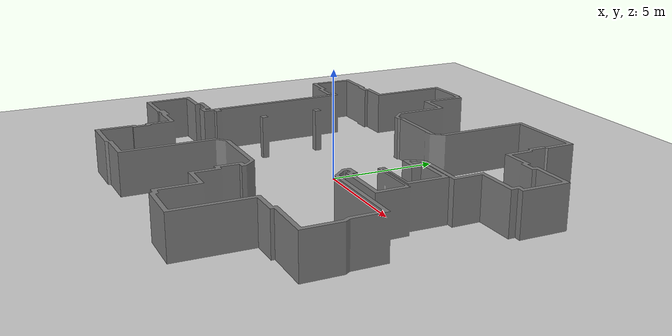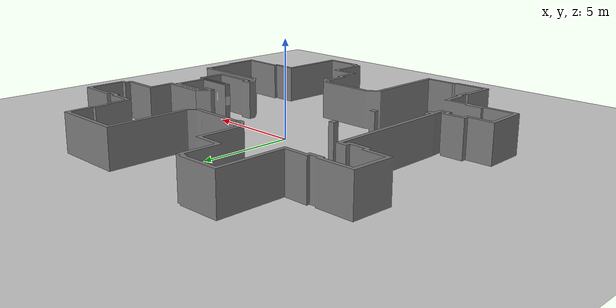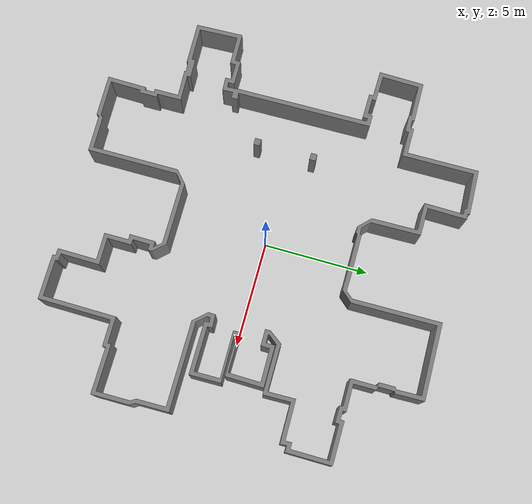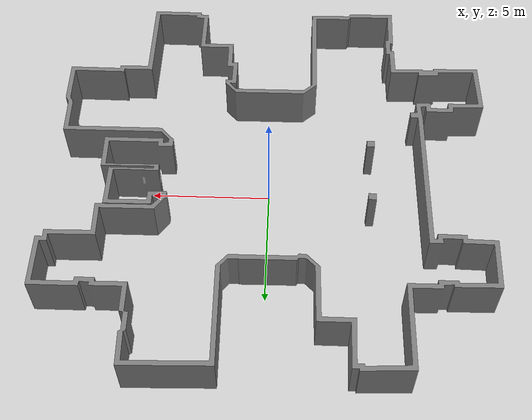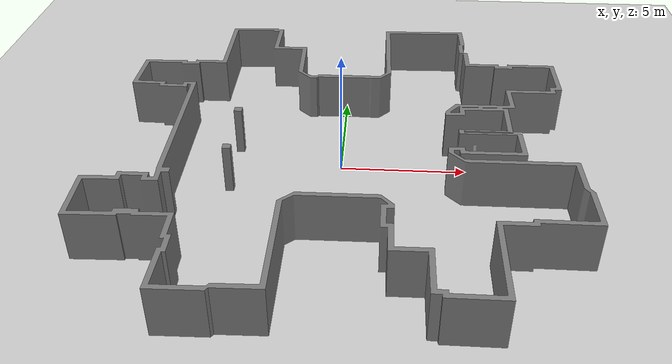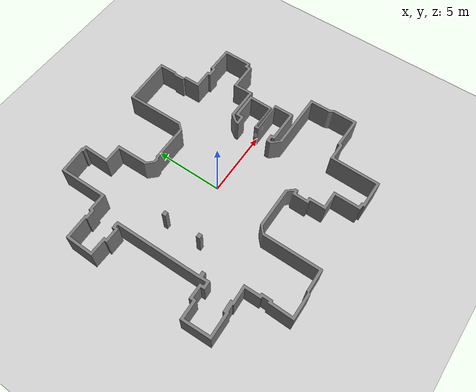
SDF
<?xml version="1.0" ?>
<gazebo version="1.2">
  <world name="default">
    <scene>
      <ambient>0.5 0.5 0.5 1</ambient>
      <background>0.5 0.5 0.5 1</background>
      <shadows>false</shadows>
    </scene>

    <physics type="ode">
      <gravity>0 0 -9.8</gravity>
      <ode>
        <solver>
          <type>quick</type>
          <dt>0.001</dt>
          <iters>10</iters>
          <sor>1.3</sor>
        </solver>
        <constraints>
          <cfm>0.0</cfm>
          <erp>0.2</erp>
          <contact_max_correcting_vel>100.0</contact_max_correcting_vel>
          <contact_surface_layer>0.001</contact_surface_layer>
        </constraints>
      </ode>
    </physics>

    <!-- Ground Plane -->
    <model name="plane1_model">
      <link name="body">
        <collision name="geom_1">
          <geometry>
            <plane>
              <normal>0 0 1</normal>
            </plane>
          </geometry>
          <surface>
            <friction>
              <ode>
                <mu>10.0</mu>
                <mu2>10.0</mu2>
                <fdir1>0 0 0</fdir1>
                <slip1>0</slip1>
                <slip2>0</slip2>
              </ode>
            </friction>
            <bounce>
              <restitution_coefficient>0</restitution_coefficient>
              <threshold>1000000.0</threshold>
            </bounce>
            <contact>
              <ode>
                <soft_cfm>0</soft_cfm>
                <soft_erp>0.2</soft_erp>
                <kp>1e10</kp>
                <kd>1</kd>
                <max_vel>100.0</max_vel>
                <min_depth>0.0001</min_depth>
              </ode>
            </contact>
          </surface>
        </collision>

        <visual name="visual_1">
          <geometry>
            <plane>
              <normal>0 0 1</normal>
              <size>100 100</size>
            </plane>
          </geometry>
          <material>
            <script>Gazebo/Grey</script>
          </material>
          <cast_shadows>false</cast_shadows>
        </visual>
      </link>
      <static>true</static>
    </model>

    <model name="muffin_map">
      <static>true</static>
      <link name="muffin_map_link">
        <pose>1 5.5 0 0 0 1.57</pose>
        <collision name="muffin_map_collision">
          <geometry>
            <mesh>
              <uri>file://floor.dae</uri>
              <scale>1.0 1.0 1.0</scale>
            </mesh>
          </geometry>
        </collision>
        <visual name="muffin_map_visual">
          <cast_shadows>false</cast_shadows>
          <geometry>
            <mesh>
              <uri>file://floor.dae</uri>
              <scale>1.0 1.0 1.0</scale>
            </mesh>
          </geometry>
        </visual>
      </link>
    </model>

    <light type="point" name="my_light1">
      <pose>10 10 10 0 0 0</pose>
      <diffuse>.8 .8 .8 1</diffuse>
      <specular>.1 .1 .1 1</specular>
      <attenuation>
        <range>200</range>
        <linear>0.05</linear>
        <constant>0.1</constant>
        <quadratic>0.0</quadratic>
      </attenuation>
      <direction>0 0 -1</direction>
      <cast_shadows>false</cast_shadows>
    </light>

    <light type="point" name="my_light2">
      <pose>10 -10 10 0 0 0</pose>
      <diffuse>.8 .8 .8 1</diffuse>
      <specular>.1 .1 .1 1</specular>
      <attenuation>
        <range>200</range>
        <linear>0.05</linear>
        <constant>0.1</constant>
        <quadratic>0.0</quadratic>
      </attenuation>
      <direction>0 0 -1</direction>
      <cast_shadows>false</cast_shadows>
    </light>

    <light type="point" name="my_light3">
      <pose>-10 10 10 0 0 0</pose>
      <diffuse>.8 .8 .8 1</diffuse>
      <specular>.1 .1 .1 1</specular>
      <attenuation>
        <range>200</range>
        <linear>0.05</linear>
        <constant>0.1</constant>
        <quadratic>0.0</quadratic>
      </attenuation>
      <direction>0 0 -1</direction>
      <cast_shadows>false</cast_shadows>
    </light>

    <light type="point" name="my_light4">
      <pose>-10 -10 10 0 0 0</pose>
      <diffuse>.8 .8 .8 1</diffuse>
      <specular>.1 .1 .1 1</specular>
      <attenuation>
        <range>200</range>
        <linear>0.05</linear>
        <constant>0.1</constant>
        <quadratic>0.0</quadratic>
      </attenuation>
      <direction>0 0 -1</direction>
      <cast_shadows>false</cast_shadows>
    </light>
  </world>
</gazebo>
